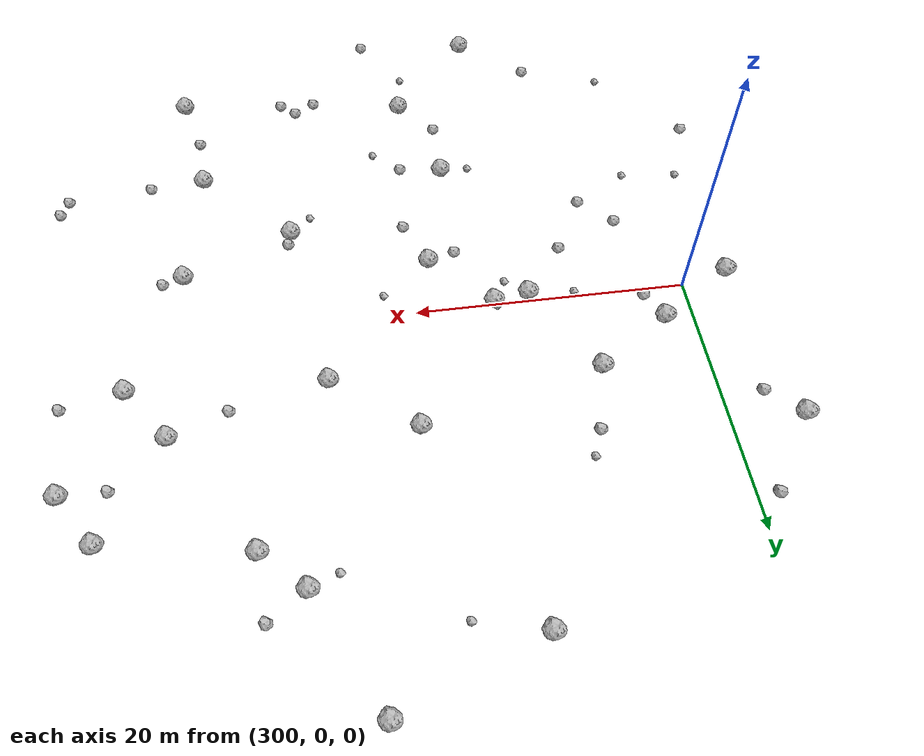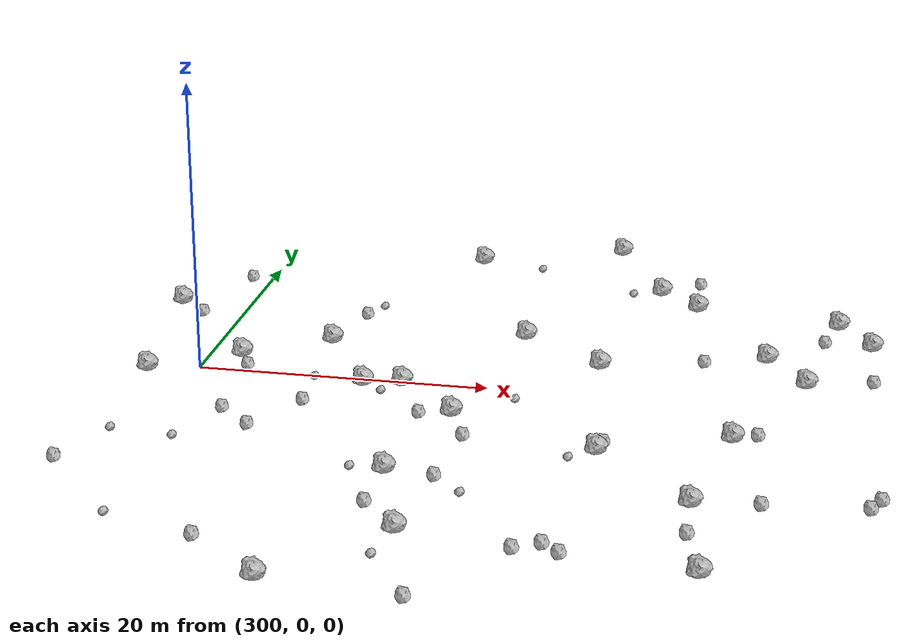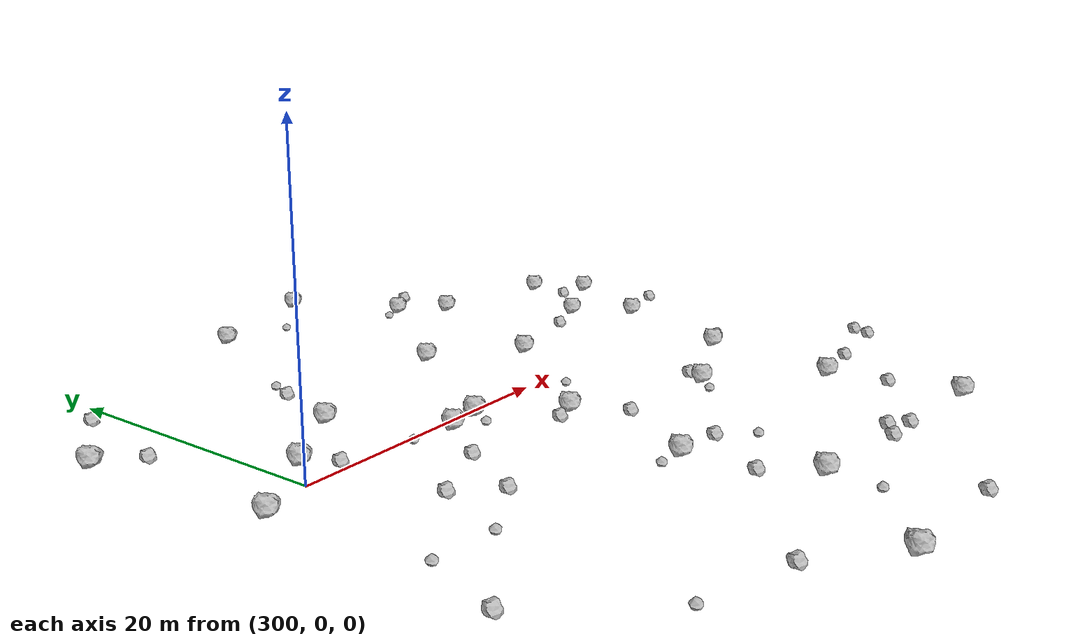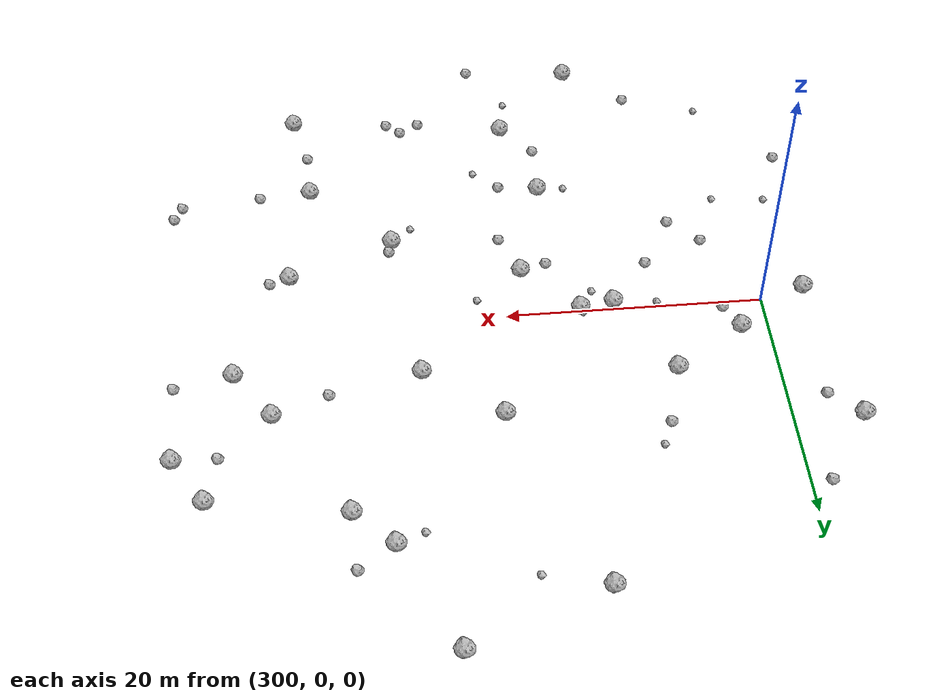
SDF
<sdf version="1.6">
 <world name="default">
  <include><uri>model://sun</uri></include>
  <model name="rock1_8_3">
   <include><uri>model://rock1</uri><pose>296.5458789814769 -0.8928312660011883 0.5 0 0 0</pose></include>
  </model>
  <model name="rock1_8_4">
   <include><uri>model://rock1</uri><pose>314.22850319975396 -0.2359524814907985 0.5 0 0 0</pose></include>
  </model>
  <model name="rock1_8_5">
   <include><uri>model://rock1</uri><pose>345.1062502045175 11.909469894795627 0.5 0 0 0</pose></include>
  </model>
  <model name="rock1_8_6">
   <include><uri>model://rock1</uri><pose>318.68835404011526 -21.676038986495676 0.5 0 0 0</pose></include>
  </model>
  <model name="rock1_8_7">
   <include><uri>model://rock1</uri><pose>315.0637329305398 24.759444810833152 0.5 0 0 0</pose></include>
  </model>
  <model name="rock1_8_8">
   <include><uri>model://rock1</uri><pose>302.1626210374819 2.7593596682186856 0.5 0 0 0</pose></include>
  </model>
  <model name="rock1_8_9">
   <include><uri>model://rock1</uri><pose>340.95483391474244 4.329242366327591 0.5 0 0 0</pose></include>
  </model>
  <model name="rock1_8_10">
   <include><uri>model://rock1</uri><pose>316.21976584985435 -13.903996918421335 0.5 0 0 0</pose></include>
  </model>
  <model name="rock1_8_11">
   <include><uri>model://rock1</uri><pose>332.37209936981066 17.406747969899776 0.5 0 0 0</pose></include>
  </model>
  <model name="rock1_8_12">
   <include><uri>model://rock1</uri><pose>326.8803982342928 5.180664957212471 0.5 0 0 0</pose></include>
  </model>
  <model name="rock1_8_13">
   <include><uri>model://rock1</uri><pose>307.68899226631675 6.444006435579425 0.5 0 0 0</pose></include>
  </model>
  <model name="rock1_8_14">
   <include><uri>model://rock1</uri><pose>336.5751239131703 -23.919561245995496 0.5 0 0 0</pose></include>
  </model>
  <model name="rock1_8_15">
   <include><uri>model://rock1</uri><pose>312.36435804689927 -28.807737111712726 0.5 0 0 0</pose></include>
  </model>
  <model name="rock1_8_16">
   <include><uri>model://rock1</uri><pose>318.5083177951605 -4.6200972157751 0.5 0 0 0</pose></include>
  </model>
  <model name="rock1_8_17">
   <include><uri>model://rock1</uri><pose>342.64377129070164 15.659200039815588 0.5 0 0 0</pose></include>
  </model>
  <model name="rock1_8_18">
   <include><uri>model://rock1</uri><pose>294.84989593875616 11.96812032090805 0.5 0 0 0</pose></include>
  </model>
  <model name="rock1_8_19">
   <include><uri>model://rock1</uri><pose>328.61569051457604 -8.737985900374436 0.5 0 0 0</pose></include>
  </model>
  <model name="rock1_8_20">
   <include><uri>model://rock1</uri><pose>336.8376470007799 -5.347845012263932 0.5 0 0 0</pose></include>
  </model>
  <model name="rock1_8_21">
   <include><uri>model://rock1</uri><pose>338.0454653461044 8.409613389047209 0.5 0 0 0</pose></include>
  </model>
  <model name="rock1_8_22">
   <include><uri>model://rock1</uri><pose>311.6125049793681 -0.6695405249188155 0.5 0 0 0</pose></include>
  </model>
  <model name="rock1_8_23">
   <include><uri>model://rock1</uri><pose>335.176269299149 -15.101925286856257 0.5 0 0 0</pose></include>
  </model>
  <model name="rock1_8_24">
   <include><uri>model://rock1</uri><pose>320.97362664916795 9.676929683570194 0.5 0 0 0</pose></include>
  </model>
  <model name="rock1_8_25">
   <include><uri>model://rock1</uri><pose>329.4015423691686 20.2542722229649 0.5 0 0 0</pose></include>
  </model>
  <model name="rock1_8_26">
   <include><uri>model://rock1</uri><pose>325.36459423350766 28.7146365746138 0.5 0 0 0</pose></include>
  </model>
  <model name="rock2_8_0">
   <include><uri>model://rock2</uri><pose>316.44507118811435 -5.202835071274162 0.3 0 0 0</pose></include>
  </model>
  <model name="rock2_8_1">
   <include><uri>model://rock2</uri><pose>328.5393533547955 -23.062709405322504 0.3 0 0 0</pose></include>
  </model>
  <model name="rock2_8_2">
   <include><uri>model://rock2</uri><pose>298.5514534384572 17.580504572286856 0.3 0 0 0</pose></include>
  </model>
  <model name="rock2_8_3">
   <include><uri>model://rock2</uri><pose>345.68921515707524 -14.121087467157574 0.3 0 0 0</pose></include>
  </model>
  <model name="rock2_8_4">
   <include><uri>model://rock2</uri><pose>297.0861266834178 9.851988867254192 0.3 0 0 0</pose></include>
  </model>
  <model name="rock2_8_5">
   <include><uri>model://rock2</uri><pose>346.3027766047395 -12.823297561532787 0.3 0 0 0</pose></include>
  </model>
  <model name="rock2_8_6">
   <include><uri>model://rock2</uri><pose>328.87105020977856 -7.56535713890138 0.3 0 0 0</pose></include>
  </model>
  <model name="rock2_8_7">
   <include><uri>model://rock2</uri><pose>333.8308325989345 6.833354447140941 0.3 0 0 0</pose></include>
  </model>
  <model name="rock2_8_8">
   <include><uri>model://rock2</uri><pose>307.4729761364628 -24.736267769101573 0.3 0 0 0</pose></include>
  </model>
  <model name="rock2_8_9">
   <include><uri>model://rock2</uri><pose>316.14461541044443 -18.620420909834614 0.3 0 0 0</pose></include>
  </model>
  <model name="rock2_8_10">
   <include><uri>model://rock2</uri><pose>341.8007037122545 11.96384895453393 0.3 0 0 0</pose></include>
  </model>
  <model name="rock2_8_11">
   <include><uri>model://rock2</uri><pose>327.3849088663038 -22.049101481461292 0.3 0 0 0</pose></include>
  </model>
  <model name="rock2_8_12">
   <include><uri>model://rock2</uri><pose>319.45795558138167 -14.364234610209209 0.3 0 0 0</pose></include>
  </model>
  <model name="rock2_8_13">
   <include><uri>model://rock2</uri><pose>308.99178248029375 11.479757897753103 0.3 0 0 0</pose></include>
  </model>
  <model name="rock2_8_14">
   <include><uri>model://rock2</uri><pose>335.3773353388677 -19.304786595238543 0.3 0 0 0</pose></include>
  </model>
  <model name="rock2_8_15">
   <include><uri>model://rock2</uri><pose>338.36970339187513 -4.815401383587069 0.3 0 0 0</pose></include>
  </model>
  <model name="rock2_8_16">
   <include><uri>model://rock2</uri><pose>332.0896208867512 22.107698998531518 0.3 0 0 0</pose></include>
  </model>
  <model name="rock2_8_17">
   <include><uri>model://rock2</uri><pose>306.0266999008913 -9.034707638323042 0.3 0 0 0</pose></include>
  </model>
  <model name="rock2_8_18">
   <include><uri>model://rock2</uri><pose>295.70535995016576 -16.041502765502955 0.3 0 0 0</pose></include>
  </model>
  <model name="rock2_8_19">
   <include><uri>model://rock2</uri><pose>339.30503340416544 -14.736751812374685 0.3 0 0 0</pose></include>
  </model>
  <model name="rock2_8_20">
   <include><uri>model://rock2</uri><pose>303.19393072453676 0.6483688462853223 0.3 0 0 0</pose></include>
  </model>
  <model name="rock2_8_21">
   <include><uri>model://rock2</uri><pose>303.66494255443934 -6.725136716495111 0.3 0 0 0</pose></include>
  </model>
  <model name="rock2_8_22">
   <include><uri>model://rock2</uri><pose>308.5038214995656 -4.587986606343392 0.3 0 0 0</pose></include>
  </model>
  <model name="rock2_8_23">
   <include><uri>model://rock2</uri><pose>321.05088744563545 -29.665995238213192 0.3 0 0 0</pose></include>
  </model>
  <model name="rock2_8_24">
   <include><uri>model://rock2</uri><pose>345.340739191916 5.272350800233049 0.3 0 0 0</pose></include>
  </model>
  <model name="rock2_8_25">
   <include><uri>model://rock2</uri><pose>325.802521188239 -22.960440849034107 0.3 0 0 0</pose></include>
  </model>
  <model name="rock2_8_26">
   <include><uri>model://rock2</uri><pose>319.9751366973893 -8.19893491999316 0.3 0 0 0</pose></include>
  </model>
  <model name="rock3_8_0">
   <include><uri>model://rock3</uri><pose>321.41853622480687 -16.328061899887345 0.2 0 0 0</pose></include>
  </model>
  <model name="rock3_8_1">
   <include><uri>model://rock3</uri><pose>327.329032260202 19.404094029286938 0.2 0 0 0</pose></include>
  </model>
  <model name="rock3_8_2">
   <include><uri>model://rock3</uri><pose>314.00871101655633 0.16226359326714856 0.2 0 0 0</pose></include>
  </model>
  <model name="rock3_8_3">
   <include><uri>model://rock3</uri><pose>313.1279047061975 -1.9883911661899418 0.2 0 0 0</pose></include>
  </model>
  <model name="rock3_8_4">
   <include><uri>model://rock3</uri><pose>308.1684341781025 -0.42200142021351894 0.2 0 0 0</pose></include>
  </model>
  <model name="rock3_8_5">
   <include><uri>model://rock3</uri><pose>313.99815869577816 -13.899468905253215 0.2 0 0 0</pose></include>
  </model>
  <model name="rock3_8_6">
   <include><uri>model://rock3</uri><pose>309.77028226656364 13.402393965347933 0.2 0 0 0</pose></include>
  </model>
  <model name="rock3_8_7">
   <include><uri>model://rock3</uri><pose>301.7952605266283 -11.513785194293217 0.2 0 0 0</pose></include>
  </model>
  <model name="rock3_8_8">
   <include><uri>model://rock3</uri><pose>322.17680775395246 -1.7774799620951534 0.2 0 0 0</pose></include>
  </model>
  <model name="rock3_8_9">
   <include><uri>model://rock3</uri><pose>297.51651738843265 -11.088667895689593 0.2 0 0 0</pose></include>
  </model>
  <model name="rock3_8_10">
   <include><uri>model://rock3</uri><pose>327.0083070353317 -10.147964903633728 0.2 0 0 0</pose></include>
  </model>
  <model name="rock3_8_11">
   <include><uri>model://rock3</uri><pose>319.7990126291355 23.48116477702093 0.2 0 0 0</pose></include>
  </model>
  <model name="rock3_8_12">
   <include><uri>model://rock3</uri><pose>318.0987500843986 -25.07117962995833 0.2 0 0 0</pose></include>
  </model>
  <model name="rock3_8_13">
   <include><uri>model://rock3</uri><pose>301.3628434080601 -22.790205603172662 0.2 0 0 0</pose></include>
  </model>
 </world>
</sdf>
